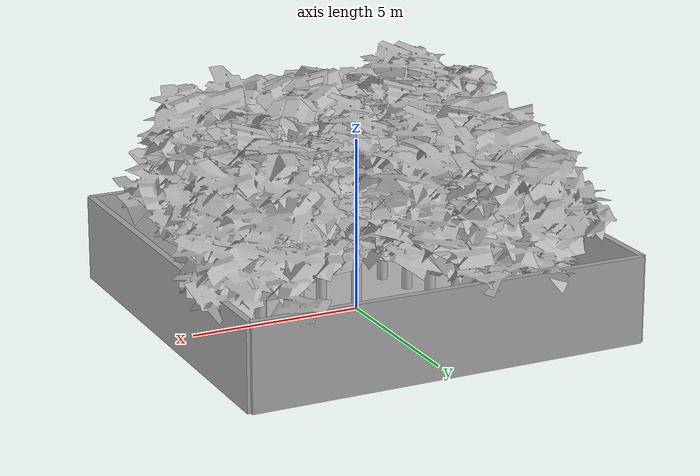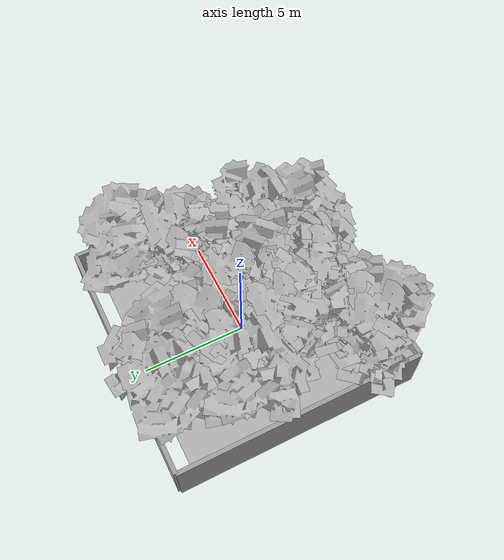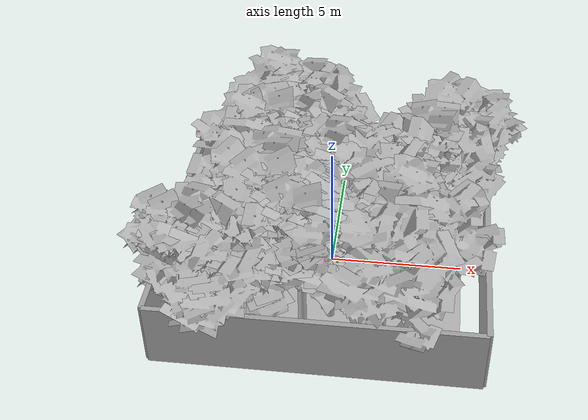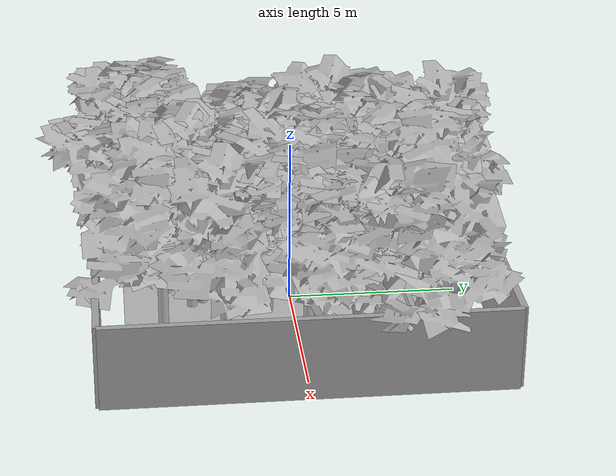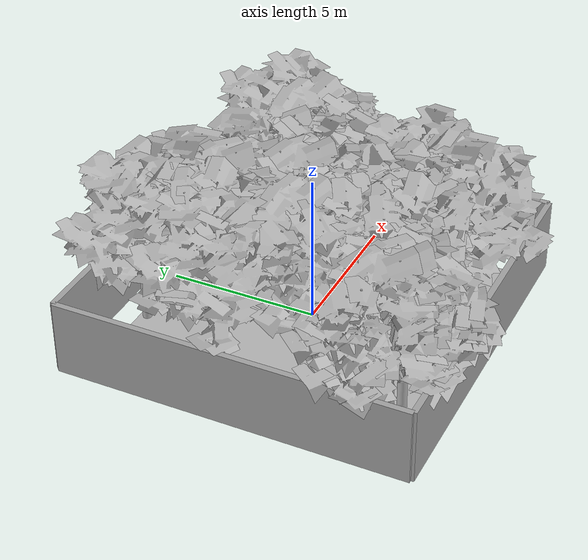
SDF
<?xml version='1.0' ?>
<sdf version='1.6'>
  <world name='world_jean'>
    <gravity>0 0 -9.8</gravity>
    <magnetic_field>6.0e-6 2.3e-5 -4.2e-5</magnetic_field>
    <atmosphere type='adiabatic'/>

    <scene>
      <ambient>0.4 0.4 0.4 1</ambient>
      <background>0.7 0.7 0.7 1</background>
      <shadows>true</shadows>
    </scene>

    <light name='sun' type='directional'>
      <cast_shadows>true</cast_shadows>
      <pose>0 0 20 0 0 0</pose>
      <diffuse>0.8 0.8 0.8 1</diffuse>
      <specular>0.2 0.2 0.2 1</specular>
      <attenuation>
        <range>1000</range>
        <constant>0.9</constant>
        <linear>0.01</linear>
        <quadratic>0.001</quadratic>
      </attenuation>
      <direction>-0.5 0.1 -0.9</direction>
    </light>

    <include>
      <uri>model://world_jean_ground</uri>
      <name>world_jean_ground</name>
      <pose>0 0 0 0 0 0</pose>
    </include>

    <include>
      <uri>model://world_jean_tree</uri>
      <name>world_jean_tree_001</name>
      <pose>1.986238 0.404763 0.000000 0 0 -1.401532</pose>
    </include>

    <include>
      <uri>model://world_jean_tree</uri>
      <name>world_jean_tree_002</name>
      <pose>0.000000 0.000000 0.000000 0 0 0.000000</pose>
    </include>

    <include>
      <uri>model://world_jean_tree</uri>
      <name>world_jean_tree_003</name>
      <pose>-2.321035 4.749358 0.000000 0 0 -2.405628</pose>
    </include>

    <include>
      <uri>model://world_jean_tree</uri>
      <name>world_jean_tree_004</name>
      <pose>0.754366 -0.724326 0.000000 0 0 -1.852761</pose>
    </include>

    <include>
      <uri>model://world_jean_tree</uri>
      <name>world_jean_tree_005</name>
      <pose>0.257643 -2.963321 0.000000 0 0 -2.835246</pose>
    </include>

    <include>
      <uri>model://world_jean_tree</uri>
      <name>world_jean_tree_006</name>
      <pose>-3.915372 -4.709622 0.000000 0 0 -0.055596</pose>
    </include>

    <include>
      <uri>model://world_jean_tree</uri>
      <name>world_jean_tree_007</name>
      <pose>-4.350989 -4.475341 0.000000 0 0 -0.055596</pose>
    </include>

    <include>
      <uri>model://world_jean_tree</uri>
      <name>world_jean_tree_008</name>
      <pose>0.027284 -2.633390 0.000000 0 0 -2.444524</pose>
    </include>

    <include>
      <uri>model://world_jean_tree</uri>
      <name>world_jean_tree_009</name>
      <pose>-2.091227 -0.923786 0.000000 0 0 0.384187</pose>
    </include>

    <include>
      <uri>model://world_jean_tree</uri>
      <name>world_jean_tree_010</name>
      <pose>-2.378709 1.914971 0.000000 0 0 0.963397</pose>
    </include>

    <include>
      <uri>model://world_jean_tree</uri>
      <name>world_jean_tree_011</name>
      <pose>-1.143144 3.841885 0.000000 0 0 -0.903485</pose>
    </include>

    <include>
      <uri>model://world_jean_tree</uri>
      <name>world_jean_tree_012</name>
      <pose>-3.062804 1.605219 0.000000 0 0 -2.689910</pose>
    </include>

    <include>
      <uri>model://world_jean_tree</uri>
      <name>world_jean_tree_013</name>
      <pose>4.685165 3.038776 0.000000 0 0 1.851518</pose>
    </include>

    <include>
      <uri>model://world_jean_tree</uri>
      <name>world_jean_tree_014</name>
      <pose>-1.238277 2.144758 0.000000 0 0 -0.140443</pose>
    </include>

    <include>
      <uri>model://world_jean_tree</uri>
      <name>world_jean_tree_015</name>
      <pose>3.556717 1.347686 0.000000 0 0 0.462843</pose>
    </include>

    <include>
      <uri>model://world_jean_tree</uri>
      <name>world_jean_tree_016</name>
      <pose>3.246999 -2.149990 0.000000 0 0 -2.599724</pose>
    </include>

    <include>
      <uri>model://world_jean_tree</uri>
      <name>world_jean_tree_017</name>
      <pose>2.192528 -3.880258 0.000000 0 0 -0.963640</pose>
    </include>

    <include>
      <uri>model://world_jean_tree</uri>
      <name>world_jean_tree_018</name>
      <pose>3.050985 0.223972 0.000000 0 0 2.207372</pose>
    </include>

    <include>
      <uri>model://world_jean_tree</uri>
      <name>world_jean_tree_019</name>
      <pose>-0.665921 -3.660063 0.000000 0 0 0.942517</pose>
    </include>

    <include>
      <uri>model://world_jean_tree</uri>
      <name>world_jean_tree_020</name>
      <pose>-1.806085 -1.958286 0.000000 0 0 1.279711</pose>
    </include>

    <model name='world_jean_boundary_walls'>
      <static>1</static>
      <link name='link'>
        <!-- West wall -->
        <collision name='wall_west_collision'>
          <pose>-5.8 0 1.25 0 0 0</pose>
          <geometry>
            <box>
              <size>0.2 11.6 2.5</size>
            </box>
          </geometry>
        </collision>
        <visual name='wall_west_visual'>
          <pose>-5.8 0 1.25 0 0 0</pose>
          <geometry>
            <box>
              <size>0.2 11.6 2.5</size>
            </box>
          </geometry>
          <material>
            <ambient>0.55 0.55 0.55 1</ambient>
            <diffuse>0.65 0.65 0.65 1</diffuse>
          </material>
        </visual>

        <!-- East wall -->
        <collision name='wall_east_collision'>
          <pose>5.8 0 1.25 0 0 0</pose>
          <geometry>
            <box>
              <size>0.2 11.6 2.5</size>
            </box>
          </geometry>
        </collision>
        <visual name='wall_east_visual'>
          <pose>5.8 0 1.25 0 0 0</pose>
          <geometry>
            <box>
              <size>0.2 11.6 2.5</size>
            </box>
          </geometry>
          <material>
            <ambient>0.55 0.55 0.55 1</ambient>
            <diffuse>0.65 0.65 0.65 1</diffuse>
          </material>
        </visual>

        <!-- South wall -->
        <collision name='wall_south_collision'>
          <pose>0 -5.8 1.25 0 0 0</pose>
          <geometry>
            <box>
              <size>11.6 0.2 2.5</size>
            </box>
          </geometry>
        </collision>
        <visual name='wall_south_visual'>
          <pose>0 -5.8 1.25 0 0 0</pose>
          <geometry>
            <box>
              <size>11.6 0.2 2.5</size>
            </box>
          </geometry>
          <material>
            <ambient>0.55 0.55 0.55 1</ambient>
            <diffuse>0.65 0.65 0.65 1</diffuse>
          </material>
        </visual>

        <!-- North wall -->
        <collision name='wall_north_collision'>
          <pose>0 5.8 1.25 0 0 0</pose>
          <geometry>
            <box>
              <size>11.6 0.2 2.5</size>
            </box>
          </geometry>
        </collision>
        <visual name='wall_north_visual'>
          <pose>0 5.8 1.25 0 0 0</pose>
          <geometry>
            <box>
              <size>11.6 0.2 2.5</size>
            </box>
          </geometry>
          <material>
            <ambient>0.55 0.55 0.55 1</ambient>
            <diffuse>0.65 0.65 0.65 1</diffuse>
          </material>
        </visual>
      </link>
    </model>

    <gui fullscreen='0'>
      <camera name='user_camera'>
        <pose>0 -18 12 0 0.55 1.57</pose>
      </camera>
    </gui>
  </world>
</sdf>

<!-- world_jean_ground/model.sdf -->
<sdf version="1.6">
  <model name="world_jean_ground">
    <static>true</static>
    <link name="link">
      <collision name="collision">
        <geometry>
          <mesh>
            <uri>model://world_jean_ground/meshes/world_jean_ground.obj</uri>
            <scale>1 1 1</scale>
          </mesh>
        </geometry>
      </collision>
      <visual name="visual">
        <geometry>
          <mesh>
            <uri>model://world_jean_ground/meshes/world_jean_ground.obj</uri>
            <scale>1 1 1</scale>
          </mesh>
        </geometry>
      </visual>
    </link>
  </model>
</sdf>

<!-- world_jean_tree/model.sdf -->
<sdf version="1.6">
  <model name="world_jean_tree">
    <static>true</static>
    <link name="link">
      <collision name="collision">
        <pose>0 0 1.0 0 0 0</pose>
        <geometry>
          <cylinder>
            <radius>0.22</radius>
            <length>2.0</length>
          </cylinder>
        </geometry>
      </collision>
      <visual name="visual">
        <geometry>
          <mesh>
            <uri>model://world_jean_tree/meshes/world_jean_tree.obj</uri>
            <scale>1 1 1</scale>
          </mesh>
        </geometry>
      </visual>
    </link>
  </model>
</sdf>
